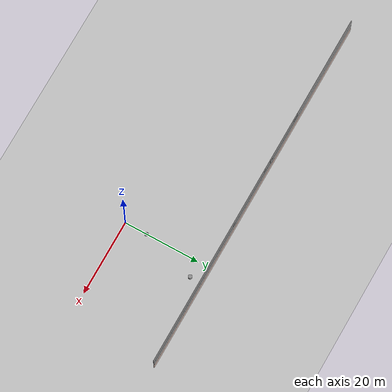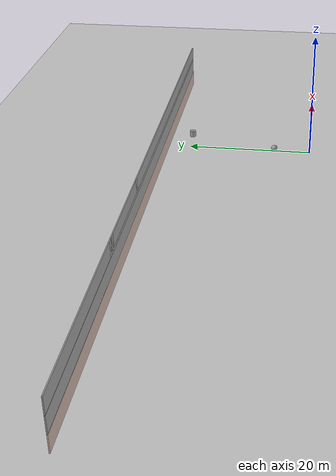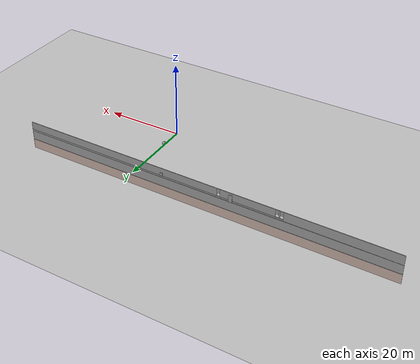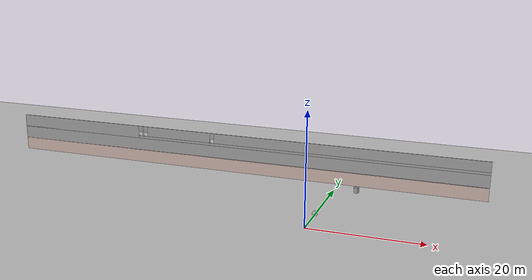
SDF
<sdf version="1.7">
 <world name="default">
  <plugin name="gazebo_ros_state" filename="libgazebo_ros_state.so">
   <ros><namespace>/gazebo</namespace></ros>
   <update_rate>1.0</update_rate>
  </plugin>
  <light name="sun" type="directional">
   <pose>0 0 10 0 -0 0</pose>
   <diffuse>0.8 0.8 0.8 1</diffuse>
   <specular>0.2 0.2 0.2 1</specular>
   <attenuation>
    <range>1000</range>
    <constant>0.9</constant>
    <linear>0.01</linear>
    <quadratic>0.001</quadratic>
   </attenuation>
   <direction>-0.5 0.1 -0.9</direction>
   <spot><inner_angle>0</inner_angle><outer_angle>0</outer_angle><falloff>0</falloff></spot>
  </light>
  <model name="ground_plane">
   <static>1</static>
   <link name="link">
    <collision name="collision">
     <geometry><plane><normal>0 0 1</normal><size>100 100</size></plane></geometry>
     <surface>
      <contact><collide_bitmask>65535</collide_bitmask></contact>
      <friction><ode><mu>100</mu><mu2>50</mu2></ode></friction>
     </surface>
    </collision>
    <visual name="visual">
     <cast_shadows>0</cast_shadows>
     <geometry><plane><normal>0 0 1</normal><size>100 100</size></plane></geometry>
     <material>
      <script><uri>file://media/materials/scripts/gazebo.material</uri><name>Gazebo/Grey</name></script>
     </material>
    </visual>
   </link>
  </model>
  <gravity>0 0 -9.8</gravity>
  <magnetic_field>6e-06 2.3e-05 -4.2e-05</magnetic_field>
  <atmosphere type="adiabatic"/>
  <physics type="ode">
   <max_step_size>0.001</max_step_size>
   <real_time_factor>1</real_time_factor>
   <real_time_update_rate>1000</real_time_update_rate>
  </physics>
  <scene><ambient>0.4 0.4 0.4 1</ambient><background>0.7 0.7 0.7 1</background><shadows>1</shadows></scene>
  <audio><device>default</device></audio>
  <spherical_coordinates>
   <surface_model>EARTH_WGS84</surface_model>
   <latitude_deg>0</latitude_deg>
   <longitude_deg>0</longitude_deg>
   <elevation>0</elevation>
   <heading_deg>0</heading_deg>
  </spherical_coordinates>
  <light name="user_spot_light_0" type="spot">
   <pose>0.532113 -0.51737 1 0 -0 0</pose>
   <diffuse>0.5 0.5 0.5 1</diffuse>
   <specular>0.1 0.1 0.1 1</specular>
   <direction>0 0 -1</direction>
   <attenuation>
    <range>20</range>
    <constant>0.5</constant>
    <linear>0.01</linear>
    <quadratic>0.001</quadratic>
   </attenuation>
   <cast_shadows>0</cast_shadows>
   <spot><inner_angle>0.6</inner_angle><outer_angle>1</outer_angle><falloff>1</falloff></spot>
  </light>
  <light name="user_directional_light_0" type="directional">
   <pose>0.668608 8.60583 1 0 -0 0</pose>
   <diffuse>0.5 0.5 0.5 1</diffuse>
   <specular>0.1 0.1 0.1 1</specular>
   <direction>0.1 0.1 -0.9</direction>
   <attenuation>
    <range>20</range>
    <constant>0.5</constant>
    <linear>0.01</linear>
    <quadratic>0.001</quadratic>
   </attenuation>
  </light>
  <model name="unit_sphere">
   <pose>0.145919 5.87852 0.5 0 -0 0</pose>
   <link name="link">
    <inertial>
     <mass>1</mass>
     <inertia><ixx>0.1</ixx><ixy>0</ixy><ixz>0</ixz><iyy>0.1</iyy><iyz>0</iyz><izz>0.1</izz></inertia>
    </inertial>
    <collision name="collision"><geometry><sphere><radius>0.5</radius></sphere></geometry></collision>
    <visual name="visual">
     <geometry><sphere><radius>0.5</radius></sphere></geometry>
     <material>
      <script><name>Gazebo/Grey</name><uri>file://media/materials/scripts/gazebo.material</uri></script>
     </material>
    </visual>
   </link>
  </model>
  <model name="Untitled">
   <pose>-20.8612 11.849 0 0 -0 0</pose>
   <link name="Door_0">
    <collision name="Door_0_Collision">
     <geometry><box><size>0.9 0.17 2</size></box></geometry>
     <pose>0 0 1 0 -0 0</pose>
    </collision>
    <visual name="Door_0_Visual">
     <pose>0 0 1 0 -0 0</pose>
     <geometry><box><size>0.9 0.17 2</size></box></geometry>
     <material>
      <script><uri>file://media/materials/scripts/gazebo.material</uri><name>Gazebo/Grey</name></script>
     </material>
    </visual>
    <pose>-8.21017 11.8681 5 0 -0 0</pose>
   </link>
   <link name="Floor_0">
    <collision name="Floor_0_Collision">
     <geometry><box><size>96.75 0.15 0.1</size></box></geometry>
     <pose>0 0 0.05 0 -0 0</pose>
    </collision>
    <visual name="Floor_0_Visual">
     <pose>0 0 0.05 0 -0 0</pose>
     <geometry><box><size>96.75 0.15 0.1</size></box></geometry>
     <material>
      <script><uri>file://media/materials/scripts/gazebo.material</uri><name>Gazebo/Grey</name></script>
      <ambient>1 1 1 1</ambient>
     </material>
     <meta><layer>1</layer></meta>
    </visual>
    <pose>-1e-06 11.774 2.5 0 -0 0</pose>
   </link>
   <link name="Floor_1">
    <collision name="Floor_1_Collision">
     <geometry><box><size>96.75 0.15 0.1</size></box></geometry>
     <pose>0 0 0.05 0 -0 0</pose>
    </collision>
    <visual name="Floor_1_Visual">
     <pose>0 0 0.05 0 -0 0</pose>
     <geometry><box><size>96.75 0.15 0.1</size></box></geometry>
     <material>
      <script><uri>file://media/materials/scripts/gazebo.material</uri><name>Gazebo/Grey</name></script>
      <ambient>1 1 1 1</ambient>
     </material>
     <meta><layer>2</layer></meta>
    </visual>
    <pose>-1e-06 11.774 5 0 -0 0</pose>
   </link>
   <link name="Wall_10">
    <collision name="Wall_10_Collision">
     <geometry><box><size>96.75 0.15 2.5</size></box></geometry>
     <pose>0 0 1.25 0 -0 0</pose>
    </collision>
    <visual name="Wall_10_Visual">
     <pose>0 0 1.25 0 -0 0</pose>
     <geometry><box><size>96.75 0.15 2.5</size></box></geometry>
     <material>
      <script><uri>file://media/materials/scripts/gazebo.material</uri><name>Gazebo/Grey</name></script>
      <ambient>1 1 1 1</ambient>
     </material>
     <meta><layer>1</layer></meta>
    </visual>
    <pose>-1e-06 11.774 2.5 0 -0 0</pose>
   </link>
   <link name="Wall_11">
    <pose>-1e-06 11.774 5 0 -0 0</pose>
    <visual name="Wall_11_Visual_0">
     <pose>-34.7978 0 1.25 0 -0 0</pose>
     <geometry><box><size>27.1544 0.15 2.5</size></box></geometry>
     <material>
      <script><uri>file://media/materials/scripts/gazebo.material</uri><name>Gazebo/Grey</name></script>
      <ambient>1 1 1 1</ambient>
     </material>
     <meta><layer>2</layer></meta>
    </visual>
    <collision name="Wall_11_Collision_0">
     <geometry><box><size>27.1544 0.15 2.5</size></box></geometry>
     <pose>-34.7978 0 1.25 0 -0 0</pose>
    </collision>
    <visual name="Wall_11_Visual_1">
     <pose>13.5772 0 0.25 0 -0 0</pose>
     <geometry><box><size>69.5956 0.15 0.5</size></box></geometry>
     <material>
      <script><uri>file://media/materials/scripts/gazebo.material</uri><name>Gazebo/Grey</name></script>
      <ambient>1 1 1 1</ambient>
     </material>
     <meta><layer>2</layer></meta>
    </visual>
    <collision name="Wall_11_Collision_1">
     <geometry><box><size>69.5956 0.15 0.5</size></box></geometry>
     <pose>13.5772 0 0.25 0 -0 0</pose>
    </collision>
    <visual name="Wall_11_Visual_2">
     <pose>-20.2559 0 1.5 0 -0 0</pose>
     <geometry><box><size>0.329292 0.15 2</size></box></geometry>
     <material>
      <script><uri>file://media/materials/scripts/gazebo.material</uri><name>Gazebo/Grey</name></script>
      <ambient>1 1 1 1</ambient>
     </material>
     <meta><layer>2</layer></meta>
    </visual>
    <collision name="Wall_11_Collision_2">
     <geometry><box><size>0.329292 0.15 2</size></box></geometry>
     <pose>-20.2559 0 1.5 0 -0 0</pose>
    </collision>
    <visual name="Wall_11_Visual_3">
     <pose>-12.398 0 1.5 0 -0 0</pose>
     <geometry><box><size>13.7867 0.15 2</size></box></geometry>
     <material>
      <script><uri>file://media/materials/scripts/gazebo.material</uri><name>Gazebo/Grey</name></script>
      <ambient>1 1 1 1</ambient>
     </material>
     <meta><layer>2</layer></meta>
    </visual>
    <collision name="Wall_11_Collision_3">
     <geometry><box><size>13.7867 0.15 2</size></box></geometry>
     <pose>-12.398 0 1.5 0 -0 0</pose>
    </collision>
    <visual name="Wall_11_Visual_4">
     <pose>21.8352 0 1.5 0 -0 0</pose>
     <geometry><box><size>53.0796 0.15 2</size></box></geometry>
     <material>
      <script><uri>file://media/materials/scripts/gazebo.material</uri><name>Gazebo/Grey</name></script>
      <ambient>1 1 1 1</ambient>
     </material>
     <meta><layer>2</layer></meta>
    </visual>
    <collision name="Wall_11_Collision_4">
     <geometry><box><size>53.0796 0.15 2</size></box></geometry>
     <pose>21.8352 0 1.5 0 -0 0</pose>
    </collision>
    <visual name="Wall_11_Visual_5">
     <pose>-20.8206 0 1.9 0 -0 0</pose>
     <geometry><box><size>0.8 0.15 1.2</size></box></geometry>
     <material>
      <script><uri>file://media/materials/scripts/gazebo.material</uri><name>Gazebo/Grey</name></script>
      <ambient>1 1 1 1</ambient>
     </material>
     <meta><layer>2</layer></meta>
    </visual>
    <collision name="Wall_11_Collision_5">
     <geometry><box><size>0.8 0.15 1.2</size></box></geometry>
     <pose>-20.8206 0 1.9 0 -0 0</pose>
    </collision>
    <visual name="Wall_11_Visual_6">
     <pose>-19.6913 0 1.9 0 -0 0</pose>
     <geometry><box><size>0.8 0.15 1.2</size></box></geometry>
     <material>
      <script><uri>file://media/materials/scripts/gazebo.material</uri><name>Gazebo/Grey</name></script>
      <ambient>1 1 1 1</ambient>
     </material>
     <meta><layer>2</layer></meta>
    </visual>
    <collision name="Wall_11_Collision_6">
     <geometry><box><size>0.8 0.15 1.2</size></box></geometry>
     <pose>-19.6913 0 1.9 0 -0 0</pose>
    </collision>
    <visual name="Wall_11_Visual_7">
     <pose>-5.10461 0 1.9 0 -0 0</pose>
     <geometry><box><size>0.8 0.15 1.2</size></box></geometry>
     <material>
      <script><uri>file://media/materials/scripts/gazebo.material</uri><name>Gazebo/Grey</name></script>
      <ambient>1 1 1 1</ambient>
     </material>
     <meta><layer>2</layer></meta>
    </visual>
    <collision name="Wall_11_Collision_7">
     <geometry><box><size>0.8 0.15 1.2</size></box></geometry>
     <pose>-5.10461 0 1.9 0 -0 0</pose>
    </collision>
   </link>
   <link name="Wall_8">
    <collision name="Wall_8_Collision">
     <geometry><box><size>96.75 0.15 2.5</size></box></geometry>
     <pose>0 0 1.25 0 -0 0</pose>
    </collision>
    <visual name="Wall_8_Visual">
     <pose>0 0 1.25 0 -0 0</pose>
     <geometry><box><size>96.75 0.15 2.5</size></box></geometry>
     <material>
      <script><uri>file://media/materials/scripts/gazebo.material</uri><name>Gazebo/Grey</name></script>
      <ambient>0.760784 0.662745 0.627451 1</ambient>
     </material>
     <meta><layer>0</layer></meta>
    </visual>
    <pose>1e-06 11.774 0 0 -0 0</pose>
   </link>
   <link name="Window_1">
    <collision name="Window_1_Collision">
     <geometry><box><size>0.8 0.17 0.8</size></box></geometry>
     <pose>0 0 0.4 0 -0 0</pose>
    </collision>
    <visual name="Window_1_Visual">
     <pose>0 0 0.4 0 -0 0</pose>
     <geometry><box><size>0.8 0.17 0.8</size></box></geometry>
     <material>
      <script><uri>file://media/materials/scripts/gazebo.material</uri><name>Gazebo/Grey</name></script>
     </material>
    </visual>
    <pose>10.0467 11.8681 5.5 0 -0 0</pose>
   </link>
   <static>1</static>
  </model>
  <model name="arena.world">
   <link name="link">
    <inertial>
     <mass>1</mass>
     <inertia><ixx>0.145833</ixx><ixy>0</ixy><ixz>0</ixz><iyy>0.145833</iyy><iyz>0</iyz><izz>0.125</izz></inertia>
    </inertial>
    <visual name="visual">
     <geometry><cylinder><radius>0.5</radius><length>1</length></cylinder></geometry>
     <material>
      <script><name>Gazebo/Grey</name><uri>file://media/materials/scripts/gazebo.material</uri></script>
      <shader type="pixel"/>
     </material>
    </visual>
    <collision name="collision">
     <geometry><cylinder><radius>0.5</radius><length>1</length></cylinder></geometry>
     <surface>
      <friction>
       <ode><mu>1</mu><mu2>1</mu2><fdir1>0 0 0</fdir1><slip1>0</slip1><slip2>0</slip2></ode>
       <torsional>
        <coefficient>1</coefficient>
        <patch_radius>0</patch_radius>
        <surface_radius>0</surface_radius>
        <use_patch_radius>1</use_patch_radius>
        <ode><slip>0</slip></ode>
       </torsional>
      </friction>
      <bounce><restitution_coefficient>0</restitution_coefficient><threshold>1e+06</threshold></bounce>
      <contact>
       <collide_without_contact>0</collide_without_contact>
       <collide_without_contact_bitmask>1</collide_without_contact_bitmask>
       <collide_bitmask>1</collide_bitmask>
       <ode>
        <soft_cfm>0</soft_cfm>
        <soft_erp>0.2</soft_erp>
        <kp>1e+13</kp>
        <kd>1</kd>
        <max_vel>0.01</max_vel>
        <min_depth>0</min_depth>
       </ode>
       <bullet>
        <split_impulse>1</split_impulse>
        <split_impulse_penetration_threshold>-0.01</split_impulse_penetration_threshold>
        <soft_cfm>0</soft_cfm>
        <soft_erp>0.2</soft_erp>
        <kp>1e+13</kp>
        <kd>1</kd>
       </bullet>
      </contact>
     </surface>
    </collision>
   </link>
   <static>0</static>
   <pose>4.19456 20.1914 0.5 0 -0 0</pose>
  </model>
 </world>
</sdf>
